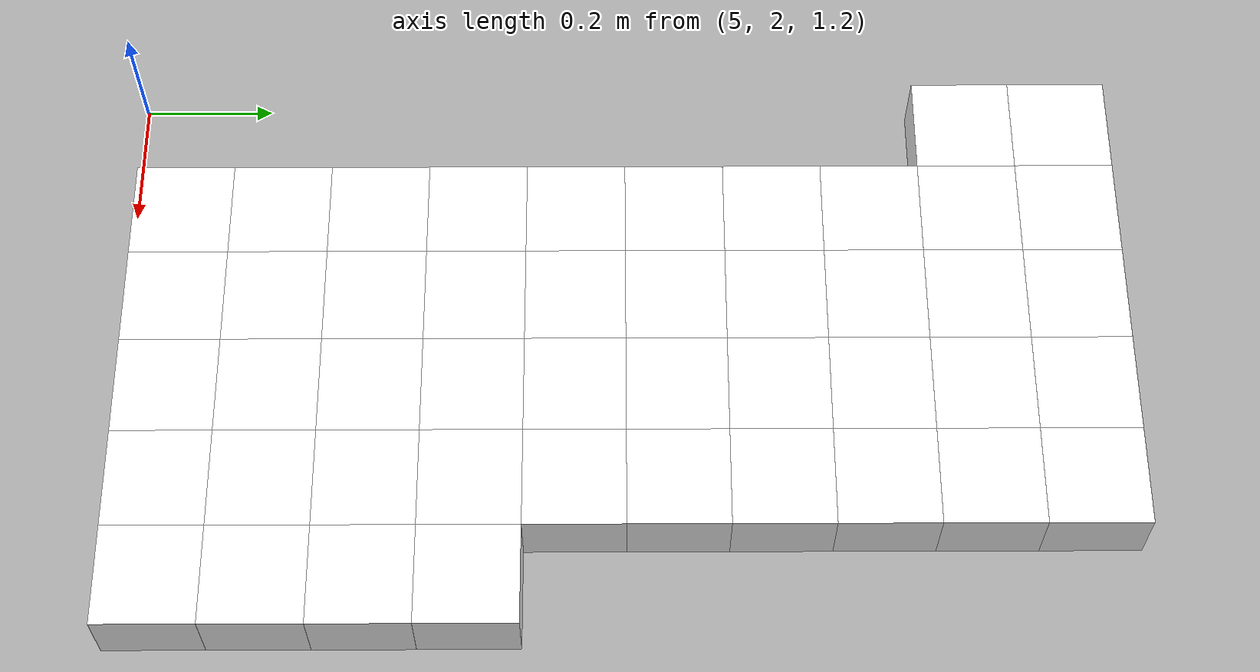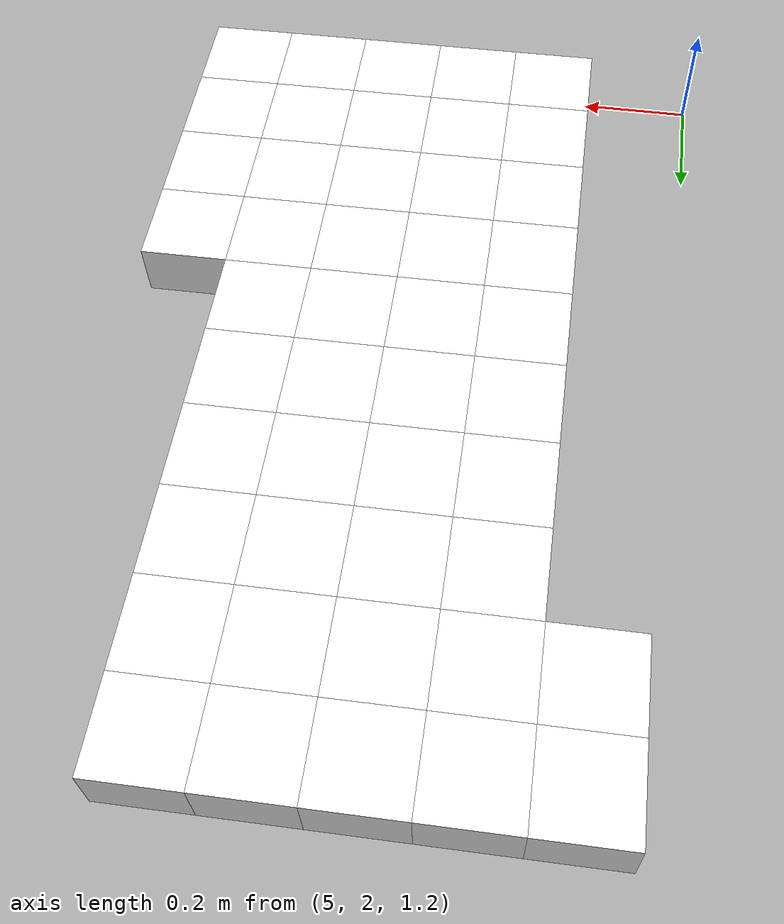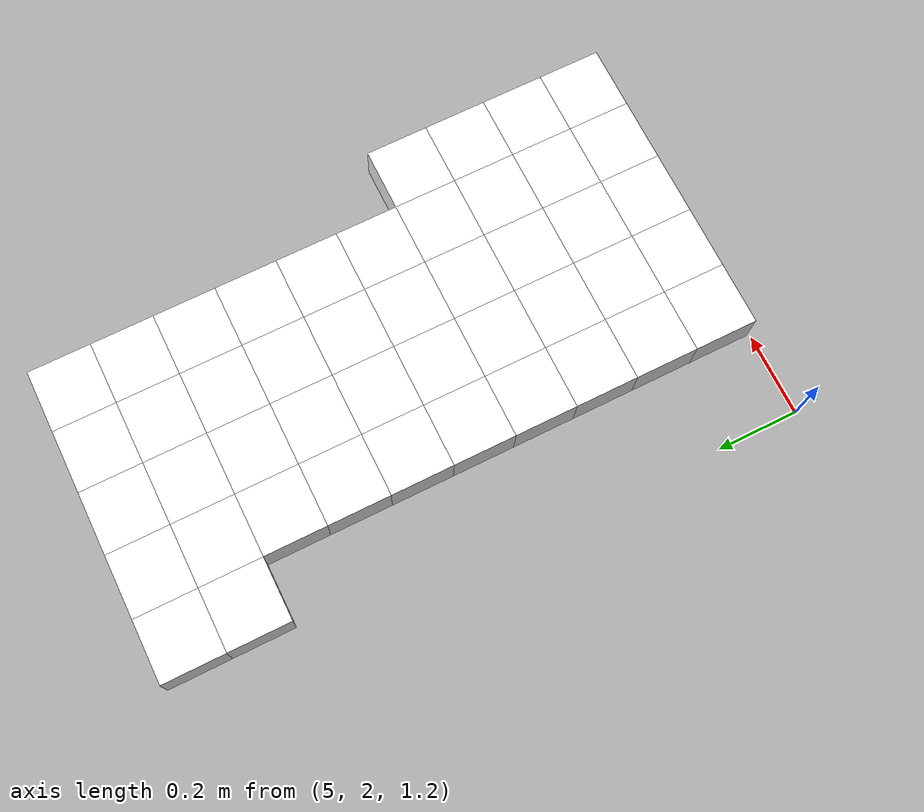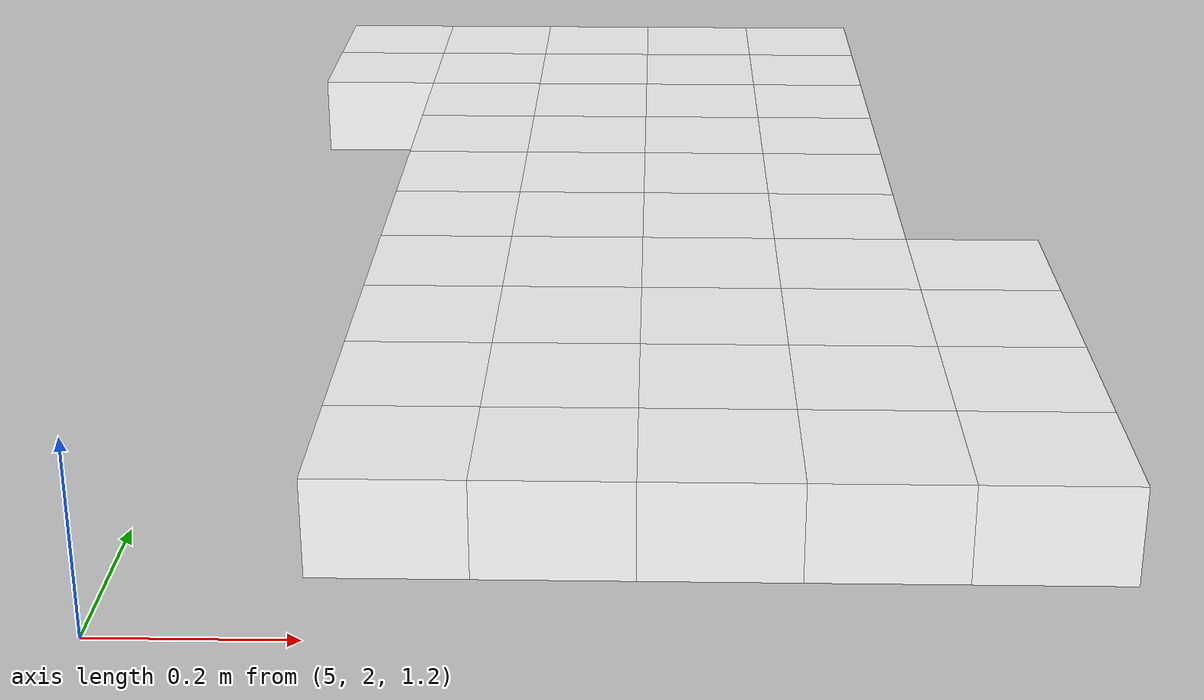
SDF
<sdf version="1.7">
 <world name="default">
  <include><uri>model://sun</uri></include>
  <model name="static_environment">
   <static>true</static>
   <link name="region_1011">
    <pose>5.275000000000004 2.0999999999999996 1.3 0.0 0.0 0.0</pose>
    <collision name="region_1011_collision">
     <geometry><box><size>0.15 0.15 0.1</size></box></geometry>
     <surface><friction><ode><mu>1.0</mu><mu2>1.0</mu2></ode></friction></surface>
    </collision>
    <visual name="region_1011_visual">
     <geometry><box><size>0.15 0.15 0.1</size></box></geometry>
     <material><ambient>1.0 1.0 1.0 1.0</ambient><diffuse>1.0 1.0 1.0 1.0</diffuse></material>
    </visual>
   </link>
   <link name="region_1012">
    <pose>5.425000000000004 2.0999999999999996 1.3 0.0 0.0 0.0</pose>
    <collision name="region_1012_collision">
     <geometry><box><size>0.15 0.15 0.1</size></box></geometry>
     <surface><friction><ode><mu>1.0</mu><mu2>1.0</mu2></ode></friction></surface>
    </collision>
    <visual name="region_1012_visual">
     <geometry><box><size>0.15 0.15 0.1</size></box></geometry>
     <material><ambient>1.0 1.0 1.0 1.0</ambient><diffuse>1.0 1.0 1.0 1.0</diffuse></material>
    </visual>
   </link>
   <link name="region_1013">
    <pose>5.575000000000005 2.0999999999999996 1.3 0.0 0.0 0.0</pose>
    <collision name="region_1013_collision">
     <geometry><box><size>0.15 0.15 0.1</size></box></geometry>
     <surface><friction><ode><mu>1.0</mu><mu2>1.0</mu2></ode></friction></surface>
    </collision>
    <visual name="region_1013_visual">
     <geometry><box><size>0.15 0.15 0.1</size></box></geometry>
     <material><ambient>1.0 1.0 1.0 1.0</ambient><diffuse>1.0 1.0 1.0 1.0</diffuse></material>
    </visual>
   </link>
   <link name="region_1014">
    <pose>5.725000000000005 2.0999999999999996 1.3 0.0 0.0 0.0</pose>
    <collision name="region_1014_collision">
     <geometry><box><size>0.15 0.15 0.1</size></box></geometry>
     <surface><friction><ode><mu>1.0</mu><mu2>1.0</mu2></ode></friction></surface>
    </collision>
    <visual name="region_1014_visual">
     <geometry><box><size>0.15 0.15 0.1</size></box></geometry>
     <material><ambient>1.0 1.0 1.0 1.0</ambient><diffuse>1.0 1.0 1.0 1.0</diffuse></material>
    </visual>
   </link>
   <link name="region_1015">
    <pose>5.875000000000005 2.0999999999999996 1.3 0.0 0.0 0.0</pose>
    <collision name="region_1015_collision">
     <geometry><box><size>0.15 0.15 0.1</size></box></geometry>
     <surface><friction><ode><mu>1.0</mu><mu2>1.0</mu2></ode></friction></surface>
    </collision>
    <visual name="region_1015_visual">
     <geometry><box><size>0.15 0.15 0.1</size></box></geometry>
     <material><ambient>1.0 1.0 1.0 1.0</ambient><diffuse>1.0 1.0 1.0 1.0</diffuse></material>
    </visual>
   </link>
   <link name="region_1031">
    <pose>5.275000000000004 2.2499999999999996 1.3 0.0 0.0 0.0</pose>
    <collision name="region_1031_collision">
     <geometry><box><size>0.15 0.15 0.1</size></box></geometry>
     <surface><friction><ode><mu>1.0</mu><mu2>1.0</mu2></ode></friction></surface>
    </collision>
    <visual name="region_1031_visual">
     <geometry><box><size>0.15 0.15 0.1</size></box></geometry>
     <material><ambient>1.0 1.0 1.0 1.0</ambient><diffuse>1.0 1.0 1.0 1.0</diffuse></material>
    </visual>
   </link>
   <link name="region_1032">
    <pose>5.425000000000004 2.2499999999999996 1.3 0.0 0.0 0.0</pose>
    <collision name="region_1032_collision">
     <geometry><box><size>0.15 0.15 0.1</size></box></geometry>
     <surface><friction><ode><mu>1.0</mu><mu2>1.0</mu2></ode></friction></surface>
    </collision>
    <visual name="region_1032_visual">
     <geometry><box><size>0.15 0.15 0.1</size></box></geometry>
     <material><ambient>1.0 1.0 1.0 1.0</ambient><diffuse>1.0 1.0 1.0 1.0</diffuse></material>
    </visual>
   </link>
   <link name="region_1033">
    <pose>5.575000000000005 2.2499999999999996 1.3 0.0 0.0 0.0</pose>
    <collision name="region_1033_collision">
     <geometry><box><size>0.15 0.15 0.1</size></box></geometry>
     <surface><friction><ode><mu>1.0</mu><mu2>1.0</mu2></ode></friction></surface>
    </collision>
    <visual name="region_1033_visual">
     <geometry><box><size>0.15 0.15 0.1</size></box></geometry>
     <material><ambient>1.0 1.0 1.0 1.0</ambient><diffuse>1.0 1.0 1.0 1.0</diffuse></material>
    </visual>
   </link>
   <link name="region_1034">
    <pose>5.725000000000005 2.2499999999999996 1.3 0.0 0.0 0.0</pose>
    <collision name="region_1034_collision">
     <geometry><box><size>0.15 0.15 0.1</size></box></geometry>
     <surface><friction><ode><mu>1.0</mu><mu2>1.0</mu2></ode></friction></surface>
    </collision>
    <visual name="region_1034_visual">
     <geometry><box><size>0.15 0.15 0.1</size></box></geometry>
     <material><ambient>1.0 1.0 1.0 1.0</ambient><diffuse>1.0 1.0 1.0 1.0</diffuse></material>
    </visual>
   </link>
   <link name="region_1035">
    <pose>5.875000000000005 2.2499999999999996 1.3 0.0 0.0 0.0</pose>
    <collision name="region_1035_collision">
     <geometry><box><size>0.15 0.15 0.1</size></box></geometry>
     <surface><friction><ode><mu>1.0</mu><mu2>1.0</mu2></ode></friction></surface>
    </collision>
    <visual name="region_1035_visual">
     <geometry><box><size>0.15 0.15 0.1</size></box></geometry>
     <material><ambient>1.0 1.0 1.0 1.0</ambient><diffuse>1.0 1.0 1.0 1.0</diffuse></material>
    </visual>
   </link>
   <link name="region_1051">
    <pose>5.275000000000004 2.3999999999999995 1.3 0.0 0.0 0.0</pose>
    <collision name="region_1051_collision">
     <geometry><box><size>0.15 0.15 0.1</size></box></geometry>
     <surface><friction><ode><mu>1.0</mu><mu2>1.0</mu2></ode></friction></surface>
    </collision>
    <visual name="region_1051_visual">
     <geometry><box><size>0.15 0.15 0.1</size></box></geometry>
     <material><ambient>1.0 1.0 1.0 1.0</ambient><diffuse>1.0 1.0 1.0 1.0</diffuse></material>
    </visual>
   </link>
   <link name="region_1052">
    <pose>5.425000000000004 2.3999999999999995 1.3 0.0 0.0 0.0</pose>
    <collision name="region_1052_collision">
     <geometry><box><size>0.15 0.15 0.1</size></box></geometry>
     <surface><friction><ode><mu>1.0</mu><mu2>1.0</mu2></ode></friction></surface>
    </collision>
    <visual name="region_1052_visual">
     <geometry><box><size>0.15 0.15 0.1</size></box></geometry>
     <material><ambient>1.0 1.0 1.0 1.0</ambient><diffuse>1.0 1.0 1.0 1.0</diffuse></material>
    </visual>
   </link>
   <link name="region_1053">
    <pose>5.575000000000005 2.3999999999999995 1.3 0.0 0.0 0.0</pose>
    <collision name="region_1053_collision">
     <geometry><box><size>0.15 0.15 0.1</size></box></geometry>
     <surface><friction><ode><mu>1.0</mu><mu2>1.0</mu2></ode></friction></surface>
    </collision>
    <visual name="region_1053_visual">
     <geometry><box><size>0.15 0.15 0.1</size></box></geometry>
     <material><ambient>1.0 1.0 1.0 1.0</ambient><diffuse>1.0 1.0 1.0 1.0</diffuse></material>
    </visual>
   </link>
   <link name="region_1054">
    <pose>5.725000000000005 2.3999999999999995 1.3 0.0 0.0 0.0</pose>
    <collision name="region_1054_collision">
     <geometry><box><size>0.15 0.15 0.1</size></box></geometry>
     <surface><friction><ode><mu>1.0</mu><mu2>1.0</mu2></ode></friction></surface>
    </collision>
    <visual name="region_1054_visual">
     <geometry><box><size>0.15 0.15 0.1</size></box></geometry>
     <material><ambient>1.0 1.0 1.0 1.0</ambient><diffuse>1.0 1.0 1.0 1.0</diffuse></material>
    </visual>
   </link>
   <link name="region_1055">
    <pose>5.875000000000005 2.3999999999999995 1.3 0.0 0.0 0.0</pose>
    <collision name="region_1055_collision">
     <geometry><box><size>0.15 0.15 0.1</size></box></geometry>
     <surface><friction><ode><mu>1.0</mu><mu2>1.0</mu2></ode></friction></surface>
    </collision>
    <visual name="region_1055_visual">
     <geometry><box><size>0.15 0.15 0.1</size></box></geometry>
     <material><ambient>1.0 1.0 1.0 1.0</ambient><diffuse>1.0 1.0 1.0 1.0</diffuse></material>
    </visual>
   </link>
   <link name="region_1071">
    <pose>5.275000000000004 2.5499999999999994 1.3 0.0 0.0 0.0</pose>
    <collision name="region_1071_collision">
     <geometry><box><size>0.15 0.15 0.1</size></box></geometry>
     <surface><friction><ode><mu>1.0</mu><mu2>1.0</mu2></ode></friction></surface>
    </collision>
    <visual name="region_1071_visual">
     <geometry><box><size>0.15 0.15 0.1</size></box></geometry>
     <material><ambient>1.0 1.0 1.0 1.0</ambient><diffuse>1.0 1.0 1.0 1.0</diffuse></material>
    </visual>
   </link>
   <link name="region_1072">
    <pose>5.425000000000004 2.5499999999999994 1.3 0.0 0.0 0.0</pose>
    <collision name="region_1072_collision">
     <geometry><box><size>0.15 0.15 0.1</size></box></geometry>
     <surface><friction><ode><mu>1.0</mu><mu2>1.0</mu2></ode></friction></surface>
    </collision>
    <visual name="region_1072_visual">
     <geometry><box><size>0.15 0.15 0.1</size></box></geometry>
     <material><ambient>1.0 1.0 1.0 1.0</ambient><diffuse>1.0 1.0 1.0 1.0</diffuse></material>
    </visual>
   </link>
   <link name="region_1073">
    <pose>5.575000000000005 2.5499999999999994 1.3 0.0 0.0 0.0</pose>
    <collision name="region_1073_collision">
     <geometry><box><size>0.15 0.15 0.1</size></box></geometry>
     <surface><friction><ode><mu>1.0</mu><mu2>1.0</mu2></ode></friction></surface>
    </collision>
    <visual name="region_1073_visual">
     <geometry><box><size>0.15 0.15 0.1</size></box></geometry>
     <material><ambient>1.0 1.0 1.0 1.0</ambient><diffuse>1.0 1.0 1.0 1.0</diffuse></material>
    </visual>
   </link>
   <link name="region_1074">
    <pose>5.725000000000005 2.5499999999999994 1.3 0.0 0.0 0.0</pose>
    <collision name="region_1074_collision">
     <geometry><box><size>0.15 0.15 0.1</size></box></geometry>
     <surface><friction><ode><mu>1.0</mu><mu2>1.0</mu2></ode></friction></surface>
    </collision>
    <visual name="region_1074_visual">
     <geometry><box><size>0.15 0.15 0.1</size></box></geometry>
     <material><ambient>1.0 1.0 1.0 1.0</ambient><diffuse>1.0 1.0 1.0 1.0</diffuse></material>
    </visual>
   </link>
   <link name="region_1075">
    <pose>5.875000000000005 2.5499999999999994 1.3 0.0 0.0 0.0</pose>
    <collision name="region_1075_collision">
     <geometry><box><size>0.15 0.15 0.1</size></box></geometry>
     <surface><friction><ode><mu>1.0</mu><mu2>1.0</mu2></ode></friction></surface>
    </collision>
    <visual name="region_1075_visual">
     <geometry><box><size>0.15 0.15 0.1</size></box></geometry>
     <material><ambient>1.0 1.0 1.0 1.0</ambient><diffuse>1.0 1.0 1.0 1.0</diffuse></material>
    </visual>
   </link>
   <link name="region_1091">
    <pose>5.275000000000004 2.6999999999999997 1.3 0.0 0.0 0.0</pose>
    <collision name="region_1091_collision">
     <geometry><box><size>0.15 0.15 0.1</size></box></geometry>
     <surface><friction><ode><mu>1.0</mu><mu2>1.0</mu2></ode></friction></surface>
    </collision>
    <visual name="region_1091_visual">
     <geometry><box><size>0.15 0.15 0.1</size></box></geometry>
     <material><ambient>1.0 1.0 1.0 1.0</ambient><diffuse>1.0 1.0 1.0 1.0</diffuse></material>
    </visual>
   </link>
   <link name="region_1092">
    <pose>5.425000000000004 2.6999999999999997 1.3 0.0 0.0 0.0</pose>
    <collision name="region_1092_collision">
     <geometry><box><size>0.15 0.15 0.1</size></box></geometry>
     <surface><friction><ode><mu>1.0</mu><mu2>1.0</mu2></ode></friction></surface>
    </collision>
    <visual name="region_1092_visual">
     <geometry><box><size>0.15 0.15 0.1</size></box></geometry>
     <material><ambient>1.0 1.0 1.0 1.0</ambient><diffuse>1.0 1.0 1.0 1.0</diffuse></material>
    </visual>
   </link>
   <link name="region_1093">
    <pose>5.575000000000005 2.6999999999999997 1.3 0.0 0.0 0.0</pose>
    <collision name="region_1093_collision">
     <geometry><box><size>0.15 0.15 0.1</size></box></geometry>
     <surface><friction><ode><mu>1.0</mu><mu2>1.0</mu2></ode></friction></surface>
    </collision>
    <visual name="region_1093_visual">
     <geometry><box><size>0.15 0.15 0.1</size></box></geometry>
     <material><ambient>1.0 1.0 1.0 1.0</ambient><diffuse>1.0 1.0 1.0 1.0</diffuse></material>
    </visual>
   </link>
   <link name="region_1094">
    <pose>5.725000000000005 2.6999999999999997 1.3 0.0 0.0 0.0</pose>
    <collision name="region_1094_collision">
     <geometry><box><size>0.15 0.15 0.1</size></box></geometry>
     <surface><friction><ode><mu>1.0</mu><mu2>1.0</mu2></ode></friction></surface>
    </collision>
    <visual name="region_1094_visual">
     <geometry><box><size>0.15 0.15 0.1</size></box></geometry>
     <material><ambient>1.0 1.0 1.0 1.0</ambient><diffuse>1.0 1.0 1.0 1.0</diffuse></material>
    </visual>
   </link>
   <link name="region_1111">
    <pose>5.275000000000004 2.8499999999999996 1.3 0.0 0.0 0.0</pose>
    <collision name="region_1111_collision">
     <geometry><box><size>0.15 0.15 0.1</size></box></geometry>
     <surface><friction><ode><mu>1.0</mu><mu2>1.0</mu2></ode></friction></surface>
    </collision>
    <visual name="region_1111_visual">
     <geometry><box><size>0.15 0.15 0.1</size></box></geometry>
     <material><ambient>1.0 1.0 1.0 1.0</ambient><diffuse>1.0 1.0 1.0 1.0</diffuse></material>
    </visual>
   </link>
   <link name="region_1112">
    <pose>5.425000000000004 2.8499999999999996 1.3 0.0 0.0 0.0</pose>
    <collision name="region_1112_collision">
     <geometry><box><size>0.15 0.15 0.1</size></box></geometry>
     <surface><friction><ode><mu>1.0</mu><mu2>1.0</mu2></ode></friction></surface>
    </collision>
    <visual name="region_1112_visual">
     <geometry><box><size>0.15 0.15 0.1</size></box></geometry>
     <material><ambient>1.0 1.0 1.0 1.0</ambient><diffuse>1.0 1.0 1.0 1.0</diffuse></material>
    </visual>
   </link>
   <link name="region_1113">
    <pose>5.575000000000005 2.8499999999999996 1.3 0.0 0.0 0.0</pose>
    <collision name="region_1113_collision">
     <geometry><box><size>0.15 0.15 0.1</size></box></geometry>
     <surface><friction><ode><mu>1.0</mu><mu2>1.0</mu2></ode></friction></surface>
    </collision>
    <visual name="region_1113_visual">
     <geometry><box><size>0.15 0.15 0.1</size></box></geometry>
     <material><ambient>1.0 1.0 1.0 1.0</ambient><diffuse>1.0 1.0 1.0 1.0</diffuse></material>
    </visual>
   </link>
   <link name="region_1114">
    <pose>5.725000000000005 2.8499999999999996 1.3 0.0 0.0 0.0</pose>
    <collision name="region_1114_collision">
     <geometry><box><size>0.15 0.15 0.1</size></box></geometry>
     <surface><friction><ode><mu>1.0</mu><mu2>1.0</mu2></ode></friction></surface>
    </collision>
    <visual name="region_1114_visual">
     <geometry><box><size>0.15 0.15 0.1</size></box></geometry>
     <material><ambient>1.0 1.0 1.0 1.0</ambient><diffuse>1.0 1.0 1.0 1.0</diffuse></material>
    </visual>
   </link>
   <link name="region_1131">
    <pose>5.275000000000004 2.9999999999999996 1.3 0.0 0.0 0.0</pose>
    <collision name="region_1131_collision">
     <geometry><box><size>0.15 0.15 0.1</size></box></geometry>
     <surface><friction><ode><mu>1.0</mu><mu2>1.0</mu2></ode></friction></surface>
    </collision>
    <visual name="region_1131_visual">
     <geometry><box><size>0.15 0.15 0.1</size></box></geometry>
     <material><ambient>1.0 1.0 1.0 1.0</ambient><diffuse>1.0 1.0 1.0 1.0</diffuse></material>
    </visual>
   </link>
   <link name="region_1132">
    <pose>5.425000000000004 2.9999999999999996 1.3 0.0 0.0 0.0</pose>
    <collision name="region_1132_collision">
     <geometry><box><size>0.15 0.15 0.1</size></box></geometry>
     <surface><friction><ode><mu>1.0</mu><mu2>1.0</mu2></ode></friction></surface>
    </collision>
    <visual name="region_1132_visual">
     <geometry><box><size>0.15 0.15 0.1</size></box></geometry>
     <material><ambient>1.0 1.0 1.0 1.0</ambient><diffuse>1.0 1.0 1.0 1.0</diffuse></material>
    </visual>
   </link>
   <link name="region_1133">
    <pose>5.575000000000005 2.9999999999999996 1.3 0.0 0.0 0.0</pose>
    <collision name="region_1133_collision">
     <geometry><box><size>0.15 0.15 0.1</size></box></geometry>
     <surface><friction><ode><mu>1.0</mu><mu2>1.0</mu2></ode></friction></surface>
    </collision>
    <visual name="region_1133_visual">
     <geometry><box><size>0.15 0.15 0.1</size></box></geometry>
     <material><ambient>1.0 1.0 1.0 1.0</ambient><diffuse>1.0 1.0 1.0 1.0</diffuse></material>
    </visual>
   </link>
   <link name="region_1134">
    <pose>5.725000000000005 2.9999999999999996 1.3 0.0 0.0 0.0</pose>
    <collision name="region_1134_collision">
     <geometry><box><size>0.15 0.15 0.1</size></box></geometry>
     <surface><friction><ode><mu>1.0</mu><mu2>1.0</mu2></ode></friction></surface>
    </collision>
    <visual name="region_1134_visual">
     <geometry><box><size>0.15 0.15 0.1</size></box></geometry>
     <material><ambient>1.0 1.0 1.0 1.0</ambient><diffuse>1.0 1.0 1.0 1.0</diffuse></material>
    </visual>
   </link>
   <link name="region_1151">
    <pose>5.275000000000004 3.1499999999999995 1.3 0.0 0.0 0.0</pose>
    <collision name="region_1151_collision">
     <geometry><box><size>0.15 0.15 0.1</size></box></geometry>
     <surface><friction><ode><mu>1.0</mu><mu2>1.0</mu2></ode></friction></surface>
    </collision>
    <visual name="region_1151_visual">
     <geometry><box><size>0.15 0.15 0.1</size></box></geometry>
     <material><ambient>1.0 1.0 1.0 1.0</ambient><diffuse>1.0 1.0 1.0 1.0</diffuse></material>
    </visual>
   </link>
   <link name="region_1152">
    <pose>5.425000000000004 3.1499999999999995 1.3 0.0 0.0 0.0</pose>
    <collision name="region_1152_collision">
     <geometry><box><size>0.15 0.15 0.1</size></box></geometry>
     <surface><friction><ode><mu>1.0</mu><mu2>1.0</mu2></ode></friction></surface>
    </collision>
    <visual name="region_1152_visual">
     <geometry><box><size>0.15 0.15 0.1</size></box></geometry>
     <material><ambient>1.0 1.0 1.0 1.0</ambient><diffuse>1.0 1.0 1.0 1.0</diffuse></material>
    </visual>
   </link>
   <link name="region_1153">
    <pose>5.575000000000005 3.1499999999999995 1.3 0.0 0.0 0.0</pose>
    <collision name="region_1153_collision">
     <geometry><box><size>0.15 0.15 0.1</size></box></geometry>
     <surface><friction><ode><mu>1.0</mu><mu2>1.0</mu2></ode></friction></surface>
    </collision>
    <visual name="region_1153_visual">
     <geometry><box><size>0.15 0.15 0.1</size></box></geometry>
     <material><ambient>1.0 1.0 1.0 1.0</ambient><diffuse>1.0 1.0 1.0 1.0</diffuse></material>
    </visual>
   </link>
   <link name="region_1154">
    <pose>5.725000000000005 3.1499999999999995 1.3 0.0 0.0 0.0</pose>
    <collision name="region_1154_collision">
     <geometry><box><size>0.15 0.15 0.1</size></box></geometry>
     <surface><friction><ode><mu>1.0</mu><mu2>1.0</mu2></ode></friction></surface>
    </collision>
    <visual name="region_1154_visual">
     <geometry><box><size>0.15 0.15 0.1</size></box></geometry>
     <material><ambient>1.0 1.0 1.0 1.0</ambient><diffuse>1.0 1.0 1.0 1.0</diffuse></material>
    </visual>
   </link>
   <link name="region_1170">
    <pose>5.1250000000000036 3.2999999999999994 1.3 0.0 0.0 0.0</pose>
    <collision name="region_1170_collision">
     <geometry><box><size>0.15 0.15 0.1</size></box></geometry>
     <surface><friction><ode><mu>1.0</mu><mu2>1.0</mu2></ode></friction></surface>
    </collision>
    <visual name="region_1170_visual">
     <geometry><box><size>0.15 0.15 0.1</size></box></geometry>
     <material><ambient>1.0 1.0 1.0 1.0</ambient><diffuse>1.0 1.0 1.0 1.0</diffuse></material>
    </visual>
   </link>
   <link name="region_1171">
    <pose>5.275000000000004 3.2999999999999994 1.3 0.0 0.0 0.0</pose>
    <collision name="region_1171_collision">
     <geometry><box><size>0.15 0.15 0.1</size></box></geometry>
     <surface><friction><ode><mu>1.0</mu><mu2>1.0</mu2></ode></friction></surface>
    </collision>
    <visual name="region_1171_visual">
     <geometry><box><size>0.15 0.15 0.1</size></box></geometry>
     <material><ambient>1.0 1.0 1.0 1.0</ambient><diffuse>1.0 1.0 1.0 1.0</diffuse></material>
    </visual>
   </link>
   <link name="region_1172">
    <pose>5.425000000000004 3.2999999999999994 1.3 0.0 0.0 0.0</pose>
    <collision name="region_1172_collision">
     <geometry><box><size>0.15 0.15 0.1</size></box></geometry>
     <surface><friction><ode><mu>1.0</mu><mu2>1.0</mu2></ode></friction></surface>
    </collision>
    <visual name="region_1172_visual">
     <geometry><box><size>0.15 0.15 0.1</size></box></geometry>
     <material><ambient>1.0 1.0 1.0 1.0</ambient><diffuse>1.0 1.0 1.0 1.0</diffuse></material>
    </visual>
   </link>
   <link name="region_1173">
    <pose>5.575000000000005 3.2999999999999994 1.3 0.0 0.0 0.0</pose>
    <collision name="region_1173_collision">
     <geometry><box><size>0.15 0.15 0.1</size></box></geometry>
     <surface><friction><ode><mu>1.0</mu><mu2>1.0</mu2></ode></friction></surface>
    </collision>
    <visual name="region_1173_visual">
     <geometry><box><size>0.15 0.15 0.1</size></box></geometry>
     <material><ambient>1.0 1.0 1.0 1.0</ambient><diffuse>1.0 1.0 1.0 1.0</diffuse></material>
    </visual>
   </link>
   <link name="region_1174">
    <pose>5.725000000000005 3.2999999999999994 1.3 0.0 0.0 0.0</pose>
    <collision name="region_1174_collision">
     <geometry><box><size>0.15 0.15 0.1</size></box></geometry>
     <surface><friction><ode><mu>1.0</mu><mu2>1.0</mu2></ode></friction></surface>
    </collision>
    <visual name="region_1174_visual">
     <geometry><box><size>0.15 0.15 0.1</size></box></geometry>
     <material><ambient>1.0 1.0 1.0 1.0</ambient><diffuse>1.0 1.0 1.0 1.0</diffuse></material>
    </visual>
   </link>
   <link name="region_1190">
    <pose>5.1250000000000036 3.4499999999999993 1.3 0.0 0.0 0.0</pose>
    <collision name="region_1190_collision">
     <geometry><box><size>0.15 0.15 0.1</size></box></geometry>
     <surface><friction><ode><mu>1.0</mu><mu2>1.0</mu2></ode></friction></surface>
    </collision>
    <visual name="region_1190_visual">
     <geometry><box><size>0.15 0.15 0.1</size></box></geometry>
     <material><ambient>1.0 1.0 1.0 1.0</ambient><diffuse>1.0 1.0 1.0 1.0</diffuse></material>
    </visual>
   </link>
   <link name="region_1191">
    <pose>5.275000000000004 3.4499999999999993 1.3 0.0 0.0 0.0</pose>
    <collision name="region_1191_collision">
     <geometry><box><size>0.15 0.15 0.1</size></box></geometry>
     <surface><friction><ode><mu>1.0</mu><mu2>1.0</mu2></ode></friction></surface>
    </collision>
    <visual name="region_1191_visual">
     <geometry><box><size>0.15 0.15 0.1</size></box></geometry>
     <material><ambient>1.0 1.0 1.0 1.0</ambient><diffuse>1.0 1.0 1.0 1.0</diffuse></material>
    </visual>
   </link>
   <link name="region_1192">
    <pose>5.425000000000004 3.4499999999999993 1.3 0.0 0.0 0.0</pose>
    <collision name="region_1192_collision">
     <geometry><box><size>0.15 0.15 0.1</size></box></geometry>
     <surface><friction><ode><mu>1.0</mu><mu2>1.0</mu2></ode></friction></surface>
    </collision>
    <visual name="region_1192_visual">
     <geometry><box><size>0.15 0.15 0.1</size></box></geometry>
     <material><ambient>1.0 1.0 1.0 1.0</ambient><diffuse>1.0 1.0 1.0 1.0</diffuse></material>
    </visual>
   </link>
   <link name="region_1193">
    <pose>5.575000000000005 3.4499999999999993 1.3 0.0 0.0 0.0</pose>
    <collision name="region_1193_collision">
     <geometry><box><size>0.15 0.15 0.1</size></box></geometry>
     <surface><friction><ode><mu>1.0</mu><mu2>1.0</mu2></ode></friction></surface>
    </collision>
    <visual name="region_1193_visual">
     <geometry><box><size>0.15 0.15 0.1</size></box></geometry>
     <material><ambient>1.0 1.0 1.0 1.0</ambient><diffuse>1.0 1.0 1.0 1.0</diffuse></material>
    </visual>
   </link>
   <link name="region_1194">
    <pose>5.725000000000005 3.4499999999999993 1.3 0.0 0.0 0.0</pose>
    <collision name="region_1194_collision">
     <geometry><box><size>0.15 0.15 0.1</size></box></geometry>
     <surface><friction><ode><mu>1.0</mu><mu2>1.0</mu2></ode></friction></surface>
    </collision>
    <visual name="region_1194_visual">
     <geometry><box><size>0.15 0.15 0.1</size></box></geometry>
     <material><ambient>1.0 1.0 1.0 1.0</ambient><diffuse>1.0 1.0 1.0 1.0</diffuse></material>
    </visual>
   </link>
  </model>
 </world>
</sdf>
